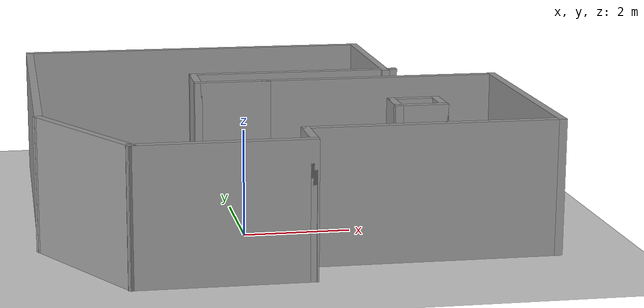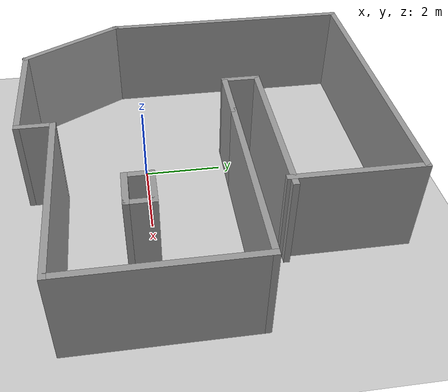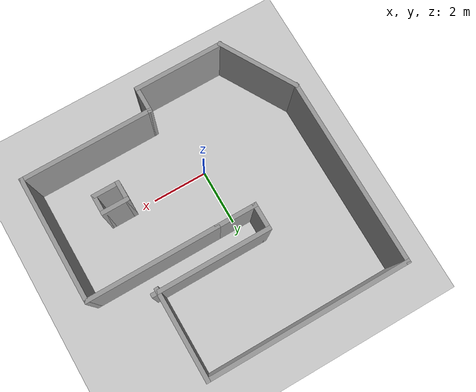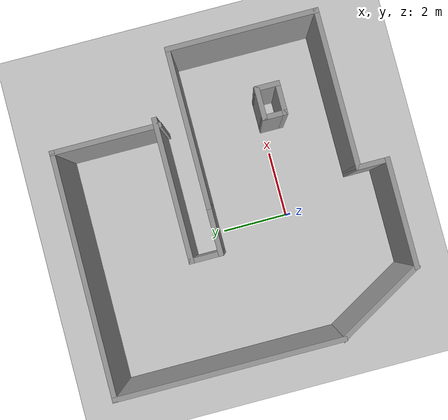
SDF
<sdf version="1.6">
 <world name="default">
  <light name="sun" type="directional">
   <pose>0 0 10 0 -0 0</pose>
   <diffuse>0.8 0.8 0.8 1</diffuse>
   <specular>0.1 0.1 0.1 1</specular>
   <attenuation>
    <range>1000</range>
    <constant>0.9</constant>
    <linear>0.01</linear>
    <quadratic>0.001</quadratic>
   </attenuation>
   <direction>-0.5 0.5 -1</direction>
  </light>
  <model name="ground_plane">
   <static>1</static>
   <link name="link">
    <collision name="collision">
     <geometry><plane><normal>0 0 1</normal><size>100 100</size></plane></geometry>
     <surface><friction><ode><mu>100</mu><mu2>50</mu2></ode></friction></surface>
    </collision>
    <visual name="visual">
     <cast_shadows>0</cast_shadows>
     <geometry><plane><normal>0 0 1</normal><size>100 100</size></plane></geometry>
     <material>
      <script><uri>file://media/materials/scripts/gazebo.material</uri><name>Gazebo/Grey</name></script>
     </material>
    </visual>
   </link>
  </model>
  <gravity>0 0 -9.8</gravity>
  <magnetic_field>6e-06 2.3e-05 -4.2e-05</magnetic_field>
  <atmosphere type="adiabatic"/>
  <physics name="default_physics" default="0" type="ode">
   <max_step_size>0.001</max_step_size>
   <real_time_factor>1</real_time_factor>
   <real_time_update_rate>1000</real_time_update_rate>
  </physics>
  <scene><ambient>0.4 0.4 0.4 1</ambient><background>0.7 0.7 0.7 1</background><shadows>1</shadows></scene>
  <spherical_coordinates>
   <surface_model>EARTH_WGS84</surface_model>
   <latitude_deg>0</latitude_deg>
   <longitude_deg>0</longitude_deg>
   <elevation>0</elevation>
   <heading_deg>0</heading_deg>
  </spherical_coordinates>
  <model name="simple_world">
   <pose>0.788154 1.52342 0 0 -0 0</pose>
   <link name="Wall_13">
    <collision name="Wall_13_Collision">
     <geometry><box><size>3 0.15 2.5</size></box></geometry>
     <pose>0 0 1.25 0 -0 0</pose>
    </collision>
    <visual name="Wall_13_Visual">
     <pose>0 0 1.25 0 -0 0</pose>
     <geometry><box><size>3 0.15 2.5</size></box></geometry>
     <material>
      <script><uri>file://media/materials/scripts/gazebo.material</uri><name>Gazebo/Grey</name></script>
      <ambient>1 1 1 1</ambient>
     </material>
     <meta><layer>0</layer></meta>
    </visual>
    <pose>-3.83627 -3.28627 0 0 0 -1.0472</pose>
   </link>
   <link name="Wall_14">
    <collision name="Wall_14_Collision">
     <geometry><box><size>3.25 0.15 2.5</size></box></geometry>
     <pose>0 0 1.25 0 -0 0</pose>
    </collision>
    <visual name="Wall_14_Visual">
     <pose>0 0 1.25 0 -0 0</pose>
     <geometry><box><size>3.25 0.15 2.5</size></box></geometry>
     <material>
      <script><uri>file://media/materials/scripts/gazebo.material</uri><name>Gazebo/Grey</name></script>
      <ambient>1 1 1 1</ambient>
     </material>
     <meta><layer>0</layer></meta>
    </visual>
    <pose>-1.57377 -4.52036 0 0 -0 0</pose>
   </link>
   <link name="Wall_17">
    <collision name="Wall_17_Collision">
     <geometry><box><size>1 0.15 2.5</size></box></geometry>
     <pose>0 0 1.25 0 -0 0</pose>
    </collision>
    <visual name="Wall_17_Visual">
     <pose>0 0 1.25 0 -0 0</pose>
     <geometry><box><size>1 0.15 2.5</size></box></geometry>
     <material>
      <script><uri>file://media/materials/scripts/gazebo.material</uri><name>Gazebo/Grey</name></script>
      <ambient>1 1 1 1</ambient>
     </material>
     <meta><layer>0</layer></meta>
    </visual>
    <pose>-0.023774 -4.09536 0 0 -0 1.5708</pose>
   </link>
   <link name="Wall_18">
    <collision name="Wall_18_Collision">
     <geometry><box><size>4.75 0.15 2.5</size></box></geometry>
     <pose>0 0 1.25 0 -0 0</pose>
    </collision>
    <visual name="Wall_18_Visual">
     <pose>0 0 1.25 0 -0 0</pose>
     <geometry><box><size>4.75 0.15 2.5</size></box></geometry>
     <material>
      <script><uri>file://media/materials/scripts/gazebo.material</uri><name>Gazebo/Grey</name></script>
      <ambient>1 1 1 1</ambient>
     </material>
     <meta><layer>0</layer></meta>
    </visual>
    <pose>2.27623 -3.67036 0 0 -0 0</pose>
   </link>
   <link name="Wall_19">
    <collision name="Wall_19_Collision">
     <geometry><box><size>4.5 0.15 2.5</size></box></geometry>
     <pose>0 0 1.25 0 -0 0</pose>
    </collision>
    <visual name="Wall_19_Visual">
     <pose>0 0 1.25 0 -0 0</pose>
     <geometry><box><size>4.5 0.15 2.5</size></box></geometry>
     <material>
      <script><uri>file://media/materials/scripts/gazebo.material</uri><name>Gazebo/Grey</name></script>
      <ambient>1 1 1 1</ambient>
     </material>
     <meta><layer>0</layer></meta>
    </visual>
    <pose>4.57623 -1.49536 0 0 -0 1.5708</pose>
   </link>
   <link name="Wall_20">
    <collision name="Wall_20_Collision">
     <geometry><box><size>4.75 0.15 2.5</size></box></geometry>
     <pose>0 0 1.25 0 -0 0</pose>
    </collision>
    <visual name="Wall_20_Visual">
     <pose>0 0 1.25 0 -0 0</pose>
     <geometry><box><size>4.75 0.15 2.5</size></box></geometry>
     <material>
      <script><uri>file://media/materials/scripts/gazebo.material</uri><name>Gazebo/Grey</name></script>
      <ambient>1 1 1 1</ambient>
     </material>
     <meta><layer>0</layer></meta>
    </visual>
    <pose>2.27623 0.67964 0 0 -0 3.14159</pose>
   </link>
   <link name="Wall_22">
    <collision name="Wall_22_Collision">
     <geometry><box><size>6.75 0.15 2.5</size></box></geometry>
     <pose>0 0 1.25 0 -0 0</pose>
    </collision>
    <visual name="Wall_22_Visual">
     <pose>0 0 1.25 0 -0 0</pose>
     <geometry><box><size>6.75 0.15 2.5</size></box></geometry>
     <material>
      <script><uri>file://media/materials/scripts/gazebo.material</uri><name>Gazebo/Grey</name></script>
      <ambient>1 1 1 1</ambient>
     </material>
     <meta><layer>0</layer></meta>
    </visual>
    <pose>-4.54877 1.24781 0 0 -0 1.5708</pose>
   </link>
   <link name="Wall_23">
    <collision name="Wall_23_Collision">
     <geometry><box><size>7.25 0.15 2.5</size></box></geometry>
     <pose>0 0 1.25 0 -0 0</pose>
    </collision>
    <visual name="Wall_23_Visual">
     <pose>0 0 1.25 0 -0 0</pose>
     <geometry><box><size>7.25 0.15 2.5</size></box></geometry>
     <material>
      <script><uri>file://media/materials/scripts/gazebo.material</uri><name>Gazebo/Grey</name></script>
      <ambient>1 1 1 1</ambient>
     </material>
     <meta><layer>0</layer></meta>
    </visual>
    <pose>-0.998774 4.54781 0 0 -0 0</pose>
   </link>
   <link name="Wall_24">
    <collision name="Wall_24_Collision">
     <geometry><box><size>3.25 0.15 2.5</size></box></geometry>
     <pose>0 0 1.25 0 -0 0</pose>
    </collision>
    <visual name="Wall_24_Visual">
     <pose>0 0 1.25 0 -0 0</pose>
     <geometry><box><size>3.25 0.15 2.5</size></box></geometry>
     <material>
      <script><uri>file://media/materials/scripts/gazebo.material</uri><name>Gazebo/Grey</name></script>
      <ambient>1 1 1 1</ambient>
     </material>
     <meta><layer>0</layer></meta>
    </visual>
    <pose>2.55123 2.99781 0 0 0 -1.5708</pose>
   </link>
   <link name="Wall_28">
    <collision name="Wall_28_Collision">
     <geometry><box><size>1.5 0.15 2.5</size></box></geometry>
     <pose>0 0 1.25 0 -0 0</pose>
    </collision>
    <visual name="Wall_28_Visual">
     <pose>0 0 1.25 0 -0 0</pose>
     <geometry><box><size>1.5 0.15 2.5</size></box></geometry>
     <material>
      <script><uri>file://media/materials/scripts/gazebo.material</uri><name>Gazebo/Grey</name></script>
      <ambient>1 1 1 1</ambient>
     </material>
     <meta><layer>0</layer></meta>
    </visual>
    <pose>-0.698774 0.67964 0 0 -0 3.14159</pose>
   </link>
   <link name="Wall_32">
    <collision name="Wall_32_Collision">
     <geometry><box><size>1 0.15 2.5</size></box></geometry>
     <pose>0 0 1.25 0 -0 0</pose>
    </collision>
    <visual name="Wall_32_Visual">
     <pose>0 0 1.25 0 -0 0</pose>
     <geometry><box><size>1 0.15 2.5</size></box></geometry>
     <material>
      <script><uri>file://media/materials/scripts/gazebo.material</uri><name>Gazebo/Grey</name></script>
      <ambient>1 1 1 1</ambient>
     </material>
     <meta><layer>0</layer></meta>
    </visual>
    <pose>-1.37377 1.10464 0 0 -0 1.5708</pose>
   </link>
   <link name="Wall_33">
    <collision name="Wall_33_Collision">
     <geometry><box><size>4.25 0.15 2.5</size></box></geometry>
     <pose>0 0 1.25 0 -0 0</pose>
    </collision>
    <visual name="Wall_33_Visual">
     <pose>0 0 1.25 0 -0 0</pose>
     <geometry><box><size>4.25 0.15 2.5</size></box></geometry>
     <material>
      <script><uri>file://media/materials/scripts/gazebo.material</uri><name>Gazebo/Grey</name></script>
      <ambient>1 1 1 1</ambient>
     </material>
     <meta><layer>0</layer></meta>
    </visual>
    <pose>0.676226 1.52964 0 0 -0 0</pose>
   </link>
   <link name="Wall_35">
    <collision name="Wall_35_Collision">
     <geometry><box><size>1 0.15 2.5</size></box></geometry>
     <pose>0 0 1.25 0 -0 0</pose>
    </collision>
    <visual name="Wall_35_Visual">
     <pose>0 0 1.25 0 -0 0</pose>
     <geometry><box><size>1 0.15 2.5</size></box></geometry>
     <material>
      <script><uri>file://media/materials/scripts/gazebo.material</uri><name>Gazebo/Grey</name></script>
      <ambient>1 1 1 1</ambient>
     </material>
     <meta><layer>0</layer></meta>
    </visual>
    <pose>2.42425 -1.47769 0 0 -0 0</pose>
   </link>
   <link name="Wall_36">
    <collision name="Wall_36_Collision">
     <geometry><box><size>0.75 0.15 2.5</size></box></geometry>
     <pose>0 0 1.25 0 -0 0</pose>
    </collision>
    <visual name="Wall_36_Visual">
     <pose>0 0 1.25 0 -0 0</pose>
     <geometry><box><size>0.75 0.15 2.5</size></box></geometry>
     <material>
      <script><uri>file://media/materials/scripts/gazebo.material</uri><name>Gazebo/Grey</name></script>
      <ambient>1 1 1 1</ambient>
     </material>
     <meta><layer>0</layer></meta>
    </visual>
    <pose>2.84925 -1.77769 0 0 0 -1.5708</pose>
   </link>
   <link name="Wall_37">
    <collision name="Wall_37_Collision">
     <geometry><box><size>1 0.15 2.5</size></box></geometry>
     <pose>0 0 1.25 0 -0 0</pose>
    </collision>
    <visual name="Wall_37_Visual">
     <pose>0 0 1.25 0 -0 0</pose>
     <geometry><box><size>1 0.15 2.5</size></box></geometry>
     <material>
      <script><uri>file://media/materials/scripts/gazebo.material</uri><name>Gazebo/Grey</name></script>
      <ambient>1 1 1 1</ambient>
     </material>
     <meta><layer>0</layer></meta>
    </visual>
    <pose>2.42425 -2.07769 0 0 -0 3.14159</pose>
   </link>
   <link name="Wall_38">
    <collision name="Wall_38_Collision">
     <geometry><box><size>0.75 0.15 2.5</size></box></geometry>
     <pose>0 0 1.25 0 -0 0</pose>
    </collision>
    <visual name="Wall_38_Visual">
     <pose>0 0 1.25 0 -0 0</pose>
     <geometry><box><size>0.75 0.15 2.5</size></box></geometry>
     <material>
      <script><uri>file://media/materials/scripts/gazebo.material</uri><name>Gazebo/Grey</name></script>
      <ambient>1 1 1 1</ambient>
     </material>
     <meta><layer>0</layer></meta>
    </visual>
    <pose>1.99925 -1.77769 0 0 -0 1.5708</pose>
   </link>
   <static>1</static>
  </model>
 </world>
</sdf>
